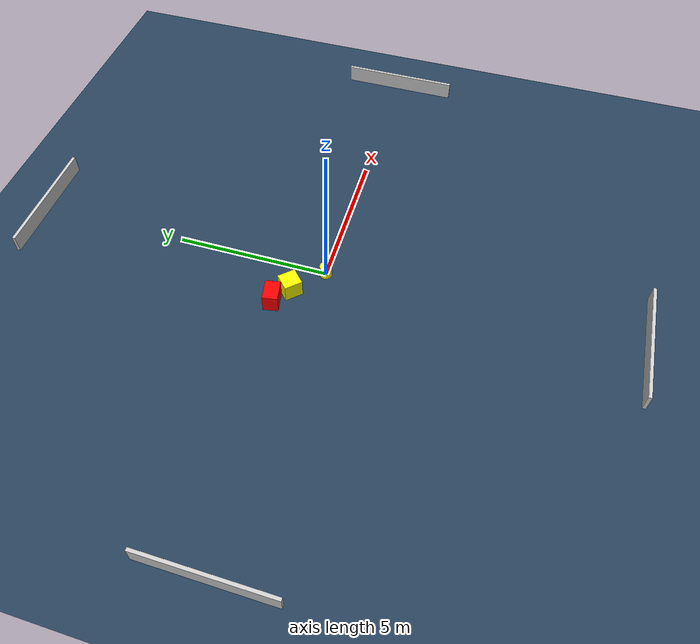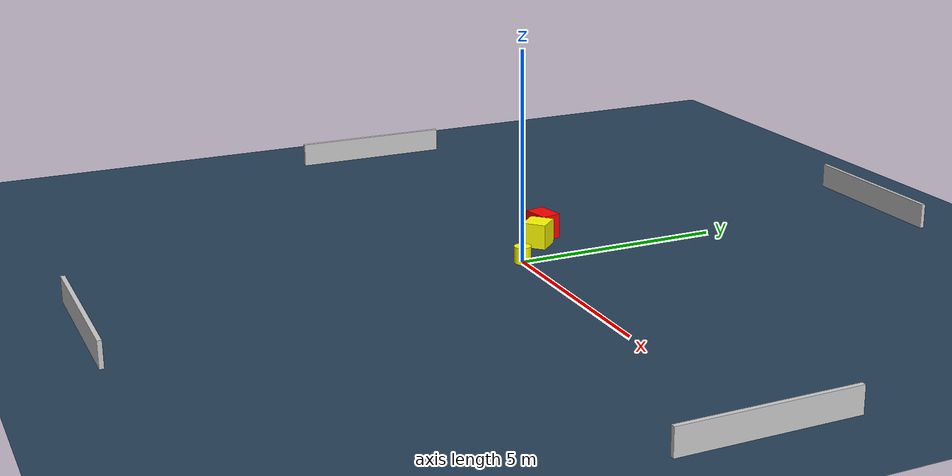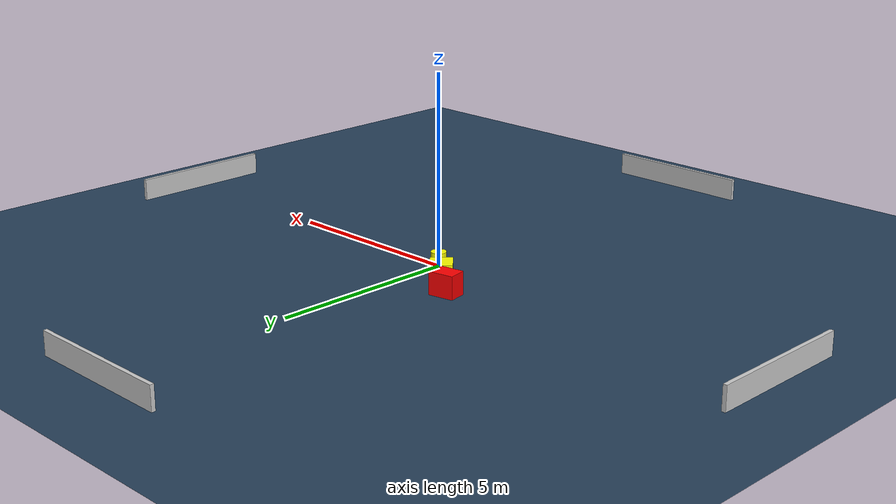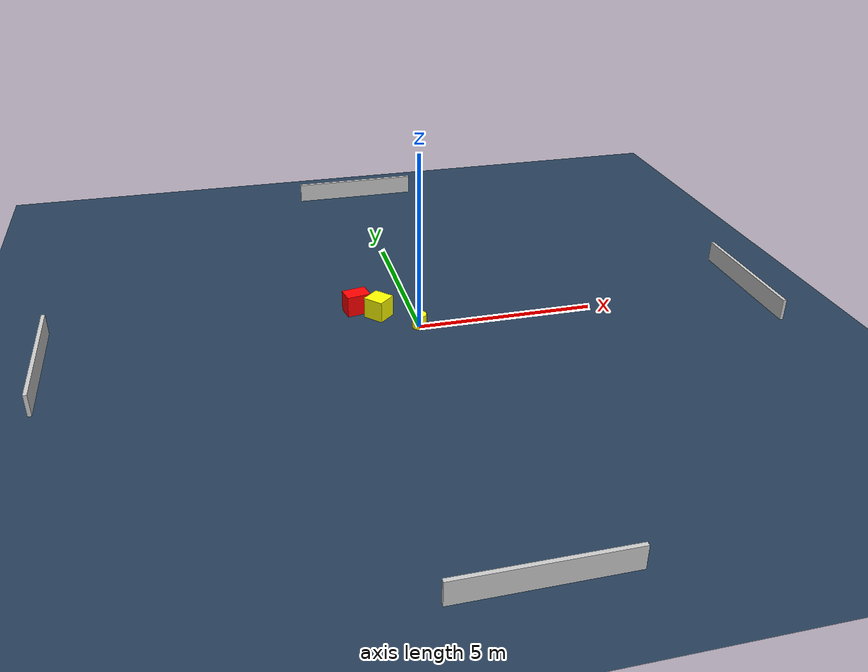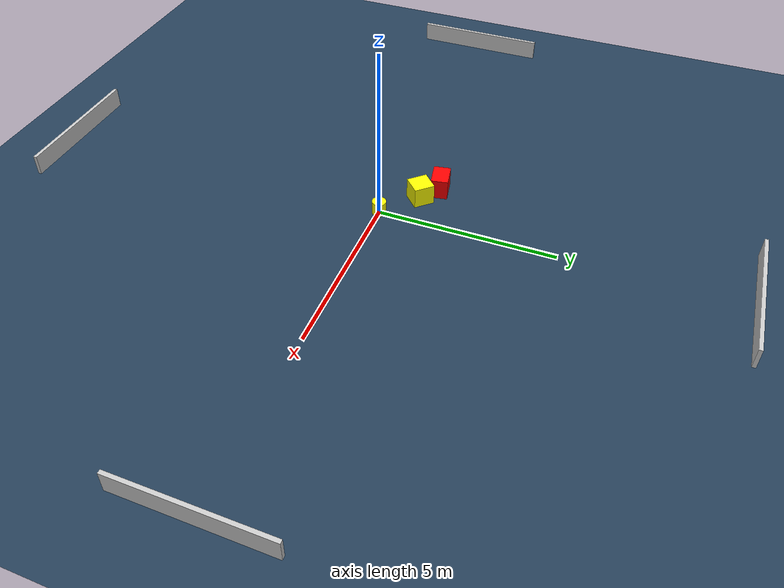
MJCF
<?xml version="1.0" ?>
<mujoco model="generated_environment">
  <option timestep="0.01" integrator="RK4" cone="elliptic"/>
  <default>
    <geom density="1"/>
  </default>
  <asset>
    <texture builtin="gradient" height="3072" name="skybox" rgb1="0.3 0.5 0.7" rgb2="0 0 0" type="skybox" width="512"/>
    <texture builtin="checker" height="300" name="groundplane" rgb1="0.2 0.3 0.4" rgb2="0.1 0.2 0.3" type="2d" width="300"/>
    <material name="groundplane" reflectance="0.2" texrepeat="5 5" texture="groundplane"/>
  </asset>
  <worldbody>
    <light dir="0 0 -1" directional="true" pos="0 0 1.5"/>
    <geom condim="3" friction="0.5 0.005 0.001" material="groundplane" name="floor" pos="0 0 0" size="0 0 0.05" type="plane"/>
    <body name="walls">
      <geom name="wall_1" condim="4" pos="-10.0 0.0 0.3" rgba="0.800000011920929 0.800000011920929 0.800000011920929 1.0" size="0.05 2.0 0.3" type="box"/>
      <geom name="wall_2" condim="4" pos="10.0 0.0 0.3" rgba="0.800000011920929 0.800000011920929 0.800000011920929 1.0" size="0.05 2.0 0.3" type="box"/>
      <geom name="wall_3" condim="4" pos="0.0 -10.0 0.3" rgba="0.800000011920929 0.800000011920929 0.800000011920929 1.0" size="2.0 0.05 0.3" type="box"/>
      <geom name="wall_4" condim="4" pos="0.0 10.0 0.3" rgba="0.800000011920929 0.800000011920929 0.800000011920929 1.0" size="2.0 0.05 0.3" type="box"/>
    </body>
    <body name="robot">
      <joint name="joint_x" type="slide" pos="0 0 0" axis="1 0 0"/>
      <joint name="joint_y" type="slide" pos="0 0 0" axis="0 1 0"/>
      <geom name="robot" type="cylinder" pos="0.0 0.0 0.2" size="0.2 0.2 0.0" mass="5.0" friction="1.0 0.005 0.0001" condim="4" rgba="1.0 1.0 0.0 1.0"/>
    </body>
    <body name="obstacle_1_movable">
      <geom name="obstacle_1_movable" condim="4" pos="-0.9649917324811873 0.8766480983542818 0.3" euler="0 0 43.08974654660321" friction="0.0 0.005 0.001" rgba="1.0 1.0 0.0 1.0" size="0.2859424175200407 0.29502827190387515 0.3" type="box" mass="0.1"/>
      <joint type="free"/>
    </body>
    <body name="obstacle_2_static">
      <geom name="obstacle_2_static" condim="4" pos="-1.5303151649183266 1.286318525653486 0.3" euler="0 0 100.35674264214548" friction="0.0 0.005 0.001" rgba="1.0 0.0 0.0 1.0" size="0.24282729815272125 0.34343066707158176 0.3" type="box"/>
    </body>
  </worldbody>
  <actuator>
    <motor name="actuator_x" joint="joint_x" gear="1" ctrlrange="-1 1"/>
    <motor name="actuator_y" joint="joint_y" gear="1" ctrlrange="-1 1"/>
  </actuator>
</mujoco>
